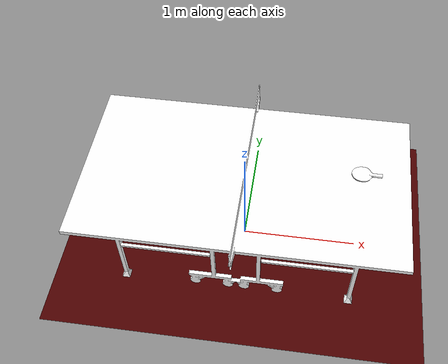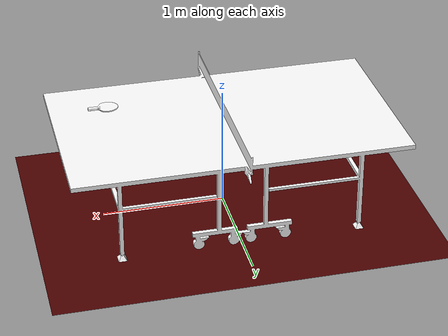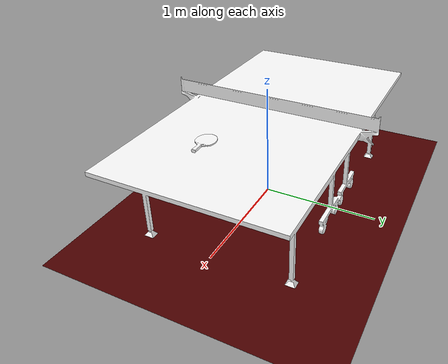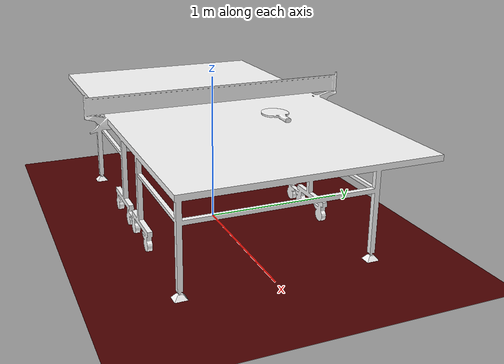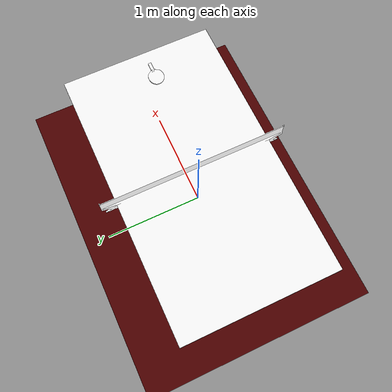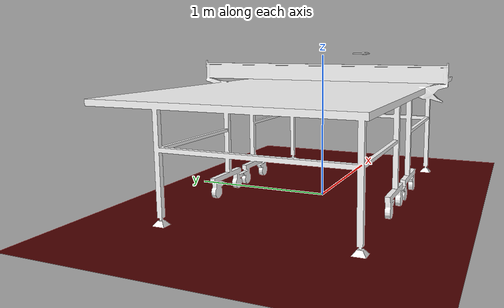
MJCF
<mujoco model="ping_pong_paddle">
    <asset>
        <!-- Ping Pong mesh and texture -->
        <mesh name="pingpong_mesh" file="./table_tennis/pingpong.obj" />
        <texture name="pingpong_tex" type="2d" file="./table_tennis/PingPong.png"/>
        <material name="pingpong_mat" texture="pingpong_tex" specular="0.2" shininess="0.4"/>

        <!-- Ping Pong Paddle mesh and texture -->
        <mesh name="ping_pong_paddle_mesh" file="./table_tennis/Ping_Pong_Paddle.obj" />
        <texture name="paddle_tex" type="2d" file="./table_tennis/paddle_1k.png"/>
        <material name="paddle_mat" texture="paddle_tex" specular="0.2" shininess="0.4"/>

        <!-- Floor material -->
        <material name="floor_mat" rgba="0.3 0 0 1"/>
    </asset>

    <worldbody>
        <!-- Floor geom -->
        <geom name="floor" type="plane" size="5 4 0.01" pos="0 0 -0.01" material="floor_mat"/>
        <!-- Ping Pong geom -->
        <geom name="ping_pong_table" type="mesh" mesh="pingpong_mesh"
              material="pingpong_mat" rgba="1 1 1 1"
              pos="0 0 0" euler="90 0 0"/>
        <body name="ping_pong_paddle" pos="1 0 1">
            <geom name="ping_pong_paddle" type="mesh" mesh="ping_pong_paddle_mesh"
                material="paddle_mat" rgba="1 1 1 1"
                pos="0 0 0" euler="0 0 0"/>
            <freejoint/>
        </body>
        <!-- Spotlights -->
        <light name="spotlight1" pos="1 1 3" dir="-1 -1 -3" cutoff="30" exponent="5" castshadow="true"/>
        <light name="spotlight2" pos="-1 -1 3" dir="1 1 -3" cutoff="30" exponent="5" castshadow="true"/>
    </worldbody>
</mujoco>
